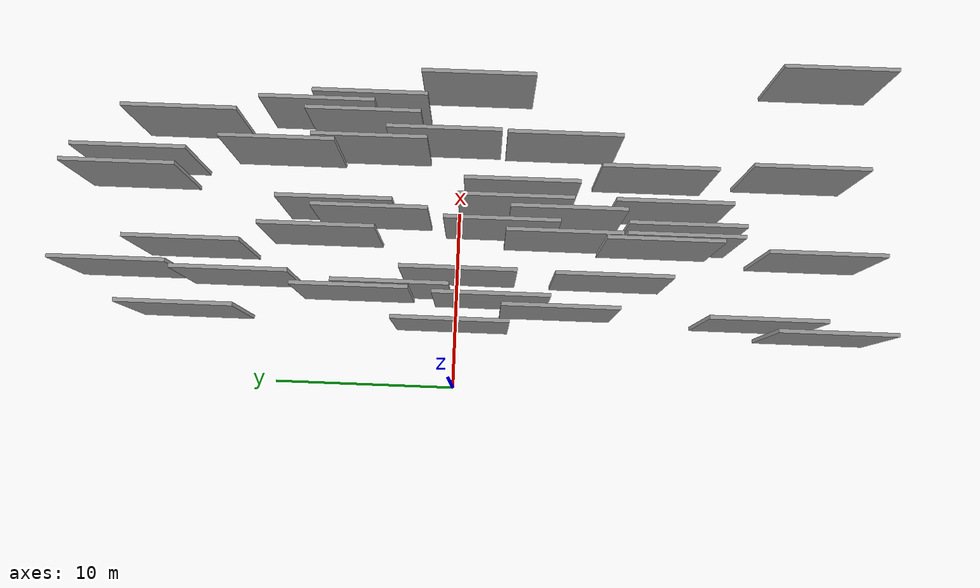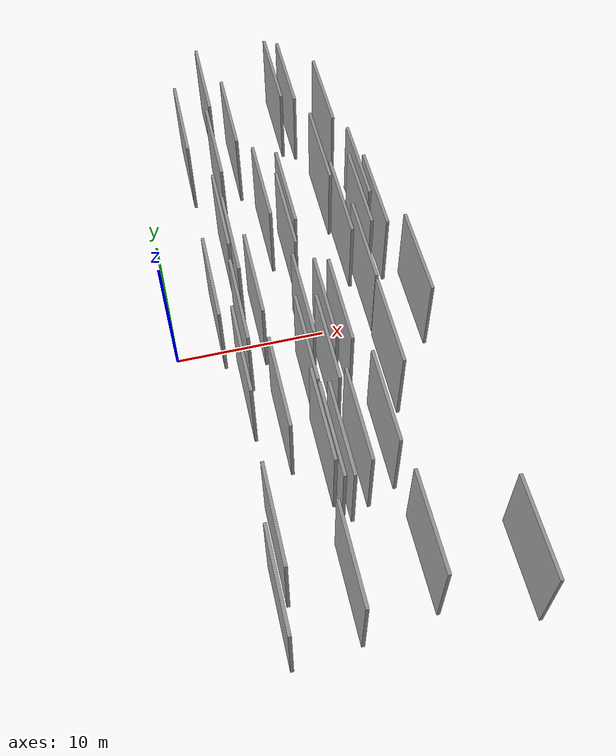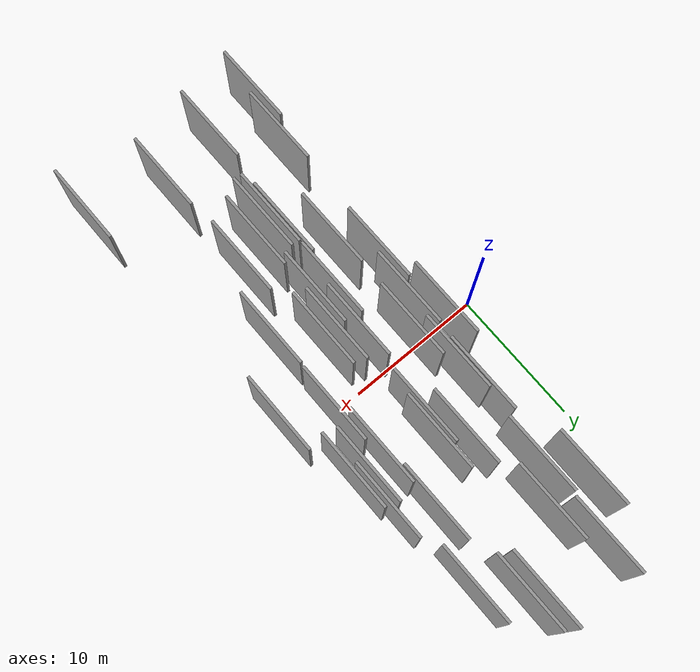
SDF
<sdf version="1.6">
 <world name="default">
  <scene>
   <sky><clouds><speed>12</speed></clouds></sky>
   <ambient>0.4 0.4 0.4 1</ambient>
   <background>0.7 0.7 0.7 1</background>
   <shadows>1</shadows>
  </scene>
  <gravity>0 0 -9.8066</gravity>
  <magnetic_field>6e-06 2.3e-05 -4.2e-05</magnetic_field>
  <physics default="0" name="default_physics" type="ode">
   <ode>
    <solver>
     <type>quick</type>
     <iters>10</iters>
     <sor>1.0</sor>
     <use_dynamic_moi_rescaling>0</use_dynamic_moi_rescaling>
    </solver>
    <constraints>
     <cfm>0</cfm>
     <erp>0.2</erp>
     <contact_max_correcting_vel>100</contact_max_correcting_vel>
     <contact_surface_layer>0.001</contact_surface_layer>
    </constraints>
   </ode>
   <max_step_size>0.004</max_step_size>
   <real_time_factor>1</real_time_factor>
   <real_time_update_rate>250</real_time_update_rate>
  </physics>
  <light name="sun" type="directional">
   <pose>0 0 10 0 0 0</pose>
   <diffuse>0.8 0.8 0.8 1</diffuse>
   <specular>0.2 0.2 0.2 1</specular>
   <attenuation>
    <range>1000</range>
    <constant>0.9</constant>
    <linear>0.01</linear>
    <quadratic>0.001</quadratic>
   </attenuation>
   <direction>-0.5 0.1 -0.9</direction>
  </light>
  <model name="grey_wall_1">
   <static>1</static>
   <pose>8.6059 4.4555 2.5 0.000000 0.000000 1.570796</pose>
   <link name="link">
    <pose>0 0 3.00 0 0 0</pose>
    <collision name="collision"><geometry><box><size>6.00 0.2 6.00</size></box></geometry></collision>
    <visual name="visual">
     <cast_shadows>0</cast_shadows>
     <geometry><box><size>6.00 0.2 6.00</size></box></geometry>
     <material>
      <script>
       <uri>model://grey_wall/materials/scripts</uri>
       <uri>model://grey_wall/materials/textures</uri>
       <name>vrc/grey_wall</name>
      </script>
     </material>
    </visual>
   </link>
  </model>
  <model name="grey_wall_2">
   <static>1</static>
   <pose>14.1788 7.4548 2.5 0.000000 0.000000 1.570796</pose>
   <link name="link">
    <pose>0 0 3.00 0 0 0</pose>
    <collision name="collision"><geometry><box><size>6.00 0.2 6.00</size></box></geometry></collision>
    <visual name="visual">
     <cast_shadows>0</cast_shadows>
     <geometry><box><size>6.00 0.2 6.00</size></box></geometry>
     <material>
      <script>
       <uri>model://grey_wall/materials/scripts</uri>
       <uri>model://grey_wall/materials/textures</uri>
       <name>vrc/grey_wall</name>
      </script>
     </material>
    </visual>
   </link>
  </model>
  <model name="grey_wall_3">
   <static>1</static>
   <pose>3.0007 0.1063 2.5 0.000000 0.000000 1.570796</pose>
   <link name="link">
    <pose>0 0 3.00 0 0 0</pose>
    <collision name="collision"><geometry><box><size>6.00 0.2 6.00</size></box></geometry></collision>
    <visual name="visual">
     <cast_shadows>0</cast_shadows>
     <geometry><box><size>6.00 0.2 6.00</size></box></geometry>
     <material>
      <script>
       <uri>model://grey_wall/materials/scripts</uri>
       <uri>model://grey_wall/materials/textures</uri>
       <name>vrc/grey_wall</name>
      </script>
     </material>
    </visual>
   </link>
  </model>
  <model name="grey_wall_4">
   <static>1</static>
   <pose>16.7987 -19.7199 2.5 0.000000 0.000000 1.570796</pose>
   <link name="link">
    <pose>0 0 3.00 0 0 0</pose>
    <collision name="collision"><geometry><box><size>6.00 0.2 6.00</size></box></geometry></collision>
    <visual name="visual">
     <cast_shadows>0</cast_shadows>
     <geometry><box><size>6.00 0.2 6.00</size></box></geometry>
     <material>
      <script>
       <uri>model://grey_wall/materials/scripts</uri>
       <uri>model://grey_wall/materials/textures</uri>
       <name>vrc/grey_wall</name>
      </script>
     </material>
    </visual>
   </link>
  </model>
  <model name="grey_wall_5">
   <static>1</static>
   <pose>3.5730 -15.8631 2.5 0.000000 0.000000 1.570796</pose>
   <link name="link">
    <pose>0 0 3.00 0 0 0</pose>
    <collision name="collision"><geometry><box><size>6.00 0.2 6.00</size></box></geometry></collision>
    <visual name="visual">
     <cast_shadows>0</cast_shadows>
     <geometry><box><size>6.00 0.2 6.00</size></box></geometry>
     <material>
      <script>
       <uri>model://grey_wall/materials/scripts</uri>
       <uri>model://grey_wall/materials/textures</uri>
       <name>vrc/grey_wall</name>
      </script>
     </material>
    </visual>
   </link>
  </model>
  <model name="grey_wall_6">
   <static>1</static>
   <pose>11.4477 -18.1524 2.5 0.000000 0.000000 1.570796</pose>
   <link name="link">
    <pose>0 0 3.00 0 0 0</pose>
    <collision name="collision"><geometry><box><size>6.00 0.2 6.00</size></box></geometry></collision>
    <visual name="visual">
     <cast_shadows>0</cast_shadows>
     <geometry><box><size>6.00 0.2 6.00</size></box></geometry>
     <material>
      <script>
       <uri>model://grey_wall/materials/scripts</uri>
       <uri>model://grey_wall/materials/textures</uri>
       <name>vrc/grey_wall</name>
      </script>
     </material>
    </visual>
   </link>
  </model>
  <model name="grey_wall_7">
   <static>1</static>
   <pose>8.9062 -5.7655 2.5 0.000000 0.000000 1.570796</pose>
   <link name="link">
    <pose>0 0 3.00 0 0 0</pose>
    <collision name="collision"><geometry><box><size>6.00 0.2 6.00</size></box></geometry></collision>
    <visual name="visual">
     <cast_shadows>0</cast_shadows>
     <geometry><box><size>6.00 0.2 6.00</size></box></geometry>
     <material>
      <script>
       <uri>model://grey_wall/materials/scripts</uri>
       <uri>model://grey_wall/materials/textures</uri>
       <name>vrc/grey_wall</name>
      </script>
     </material>
    </visual>
   </link>
  </model>
  <model name="grey_wall_8">
   <static>1</static>
   <pose>12.7674 -5.4809 2.5 0.000000 0.000000 1.570796</pose>
   <link name="link">
    <pose>0 0 3.00 0 0 0</pose>
    <collision name="collision"><geometry><box><size>6.00 0.2 6.00</size></box></geometry></collision>
    <visual name="visual">
     <cast_shadows>0</cast_shadows>
     <geometry><box><size>6.00 0.2 6.00</size></box></geometry>
     <material>
      <script>
       <uri>model://grey_wall/materials/scripts</uri>
       <uri>model://grey_wall/materials/textures</uri>
       <name>vrc/grey_wall</name>
      </script>
     </material>
    </visual>
   </link>
  </model>
  <model name="grey_wall_9">
   <static>1</static>
   <pose>7.5438 7.0990 2.5 0.000000 0.000000 1.570796</pose>
   <link name="link">
    <pose>0 0 3.00 0 0 0</pose>
    <collision name="collision"><geometry><box><size>6.00 0.2 6.00</size></box></geometry></collision>
    <visual name="visual">
     <cast_shadows>0</cast_shadows>
     <geometry><box><size>6.00 0.2 6.00</size></box></geometry>
     <material>
      <script>
       <uri>model://grey_wall/materials/scripts</uri>
       <uri>model://grey_wall/materials/textures</uri>
       <name>vrc/grey_wall</name>
      </script>
     </material>
    </visual>
   </link>
  </model>
  <model name="grey_wall_10">
   <static>1</static>
   <pose>11.1655 -10.3818 2.5 0.000000 0.000000 1.570796</pose>
   <link name="link">
    <pose>0 0 3.00 0 0 0</pose>
    <collision name="collision"><geometry><box><size>6.00 0.2 6.00</size></box></geometry></collision>
    <visual name="visual">
     <cast_shadows>0</cast_shadows>
     <geometry><box><size>6.00 0.2 6.00</size></box></geometry>
     <material>
      <script>
       <uri>model://grey_wall/materials/scripts</uri>
       <uri>model://grey_wall/materials/textures</uri>
       <name>vrc/grey_wall</name>
      </script>
     </material>
    </visual>
   </link>
  </model>
  <model name="grey_wall_11">
   <static>1</static>
   <pose>8.2481 -11.8106 2.5 0.000000 0.000000 1.570796</pose>
   <link name="link">
    <pose>0 0 3.00 0 0 0</pose>
    <collision name="collision"><geometry><box><size>6.00 0.2 6.00</size></box></geometry></collision>
    <visual name="visual">
     <cast_shadows>0</cast_shadows>
     <geometry><box><size>6.00 0.2 6.00</size></box></geometry>
     <material>
      <script>
       <uri>model://grey_wall/materials/scripts</uri>
       <uri>model://grey_wall/materials/textures</uri>
       <name>vrc/grey_wall</name>
      </script>
     </material>
    </visual>
   </link>
  </model>
  <model name="grey_wall_12">
   <static>1</static>
   <pose>6.6210 13.8926 2.5 0.000000 0.000000 1.570796</pose>
   <link name="link">
    <pose>0 0 3.00 0 0 0</pose>
    <collision name="collision"><geometry><box><size>6.00 0.2 6.00</size></box></geometry></collision>
    <visual name="visual">
     <cast_shadows>0</cast_shadows>
     <geometry><box><size>6.00 0.2 6.00</size></box></geometry>
     <material>
      <script>
       <uri>model://grey_wall/materials/scripts</uri>
       <uri>model://grey_wall/materials/textures</uri>
       <name>vrc/grey_wall</name>
      </script>
     </material>
    </visual>
   </link>
  </model>
  <model name="grey_wall_13">
   <static>1</static>
   <pose>8.9786 6.2793 2.5 0.000000 0.000000 1.570796</pose>
   <link name="link">
    <pose>0 0 3.00 0 0 0</pose>
    <collision name="collision"><geometry><box><size>6.00 0.2 6.00</size></box></geometry></collision>
    <visual name="visual">
     <cast_shadows>0</cast_shadows>
     <geometry><box><size>6.00 0.2 6.00</size></box></geometry>
     <material>
      <script>
       <uri>model://grey_wall/materials/scripts</uri>
       <uri>model://grey_wall/materials/textures</uri>
       <name>vrc/grey_wall</name>
      </script>
     </material>
    </visual>
   </link>
  </model>
  <model name="grey_wall_14">
   <static>1</static>
   <pose>10.4378 17.4808 2.5 0.000000 0.000000 1.570796</pose>
   <link name="link">
    <pose>0 0 3.00 0 0 0</pose>
    <collision name="collision"><geometry><box><size>6.00 0.2 6.00</size></box></geometry></collision>
    <visual name="visual">
     <cast_shadows>0</cast_shadows>
     <geometry><box><size>6.00 0.2 6.00</size></box></geometry>
     <material>
      <script>
       <uri>model://grey_wall/materials/scripts</uri>
       <uri>model://grey_wall/materials/textures</uri>
       <name>vrc/grey_wall</name>
      </script>
     </material>
    </visual>
   </link>
  </model>
  <model name="grey_wall_15">
   <static>1</static>
   <pose>7.6679 -5.5635 2.5 0.000000 0.000000 1.570796</pose>
   <link name="link">
    <pose>0 0 3.00 0 0 0</pose>
    <collision name="collision"><geometry><box><size>6.00 0.2 6.00</size></box></geometry></collision>
    <visual name="visual">
     <cast_shadows>0</cast_shadows>
     <geometry><box><size>6.00 0.2 6.00</size></box></geometry>
     <material>
      <script>
       <uri>model://grey_wall/materials/scripts</uri>
       <uri>model://grey_wall/materials/textures</uri>
       <name>vrc/grey_wall</name>
      </script>
     </material>
    </visual>
   </link>
  </model>
  <model name="grey_wall_16">
   <static>1</static>
   <pose>13.4509 14.5572 2.5 0.000000 0.000000 1.570796</pose>
   <link name="link">
    <pose>0 0 3.00 0 0 0</pose>
    <collision name="collision"><geometry><box><size>6.00 0.2 6.00</size></box></geometry></collision>
    <visual name="visual">
     <cast_shadows>0</cast_shadows>
     <geometry><box><size>6.00 0.2 6.00</size></box></geometry>
     <material>
      <script>
       <uri>model://grey_wall/materials/scripts</uri>
       <uri>model://grey_wall/materials/textures</uri>
       <name>vrc/grey_wall</name>
      </script>
     </material>
    </visual>
   </link>
  </model>
  <model name="grey_wall_17">
   <static>1</static>
   <pose>3.3088 13.9810 2.5 0.000000 0.000000 1.570796</pose>
   <link name="link">
    <pose>0 0 3.00 0 0 0</pose>
    <collision name="collision"><geometry><box><size>6.00 0.2 6.00</size></box></geometry></collision>
    <visual name="visual">
     <cast_shadows>0</cast_shadows>
     <geometry><box><size>6.00 0.2 6.00</size></box></geometry>
     <material>
      <script>
       <uri>model://grey_wall/materials/scripts</uri>
       <uri>model://grey_wall/materials/textures</uri>
       <name>vrc/grey_wall</name>
      </script>
     </material>
    </visual>
   </link>
  </model>
  <model name="grey_wall_18">
   <static>1</static>
   <pose>4.3541 -1.9218 2.5 0.000000 0.000000 1.570796</pose>
   <link name="link">
    <pose>0 0 3.00 0 0 0</pose>
    <collision name="collision"><geometry><box><size>6.00 0.2 6.00</size></box></geometry></collision>
    <visual name="visual">
     <cast_shadows>0</cast_shadows>
     <geometry><box><size>6.00 0.2 6.00</size></box></geometry>
     <material>
      <script>
       <uri>model://grey_wall/materials/scripts</uri>
       <uri>model://grey_wall/materials/textures</uri>
       <name>vrc/grey_wall</name>
      </script>
     </material>
    </visual>
   </link>
  </model>
  <model name="grey_wall_19">
   <static>1</static>
   <pose>13.6673 5.0333 2.5 0.000000 0.000000 1.570796</pose>
   <link name="link">
    <pose>0 0 3.00 0 0 0</pose>
    <collision name="collision"><geometry><box><size>6.00 0.2 6.00</size></box></geometry></collision>
    <visual name="visual">
     <cast_shadows>0</cast_shadows>
     <geometry><box><size>6.00 0.2 6.00</size></box></geometry>
     <material>
      <script>
       <uri>model://grey_wall/materials/scripts</uri>
       <uri>model://grey_wall/materials/textures</uri>
       <name>vrc/grey_wall</name>
      </script>
     </material>
    </visual>
   </link>
  </model>
  <model name="grey_wall_20">
   <static>1</static>
   <pose>3.0209 -19.3131 2.5 0.000000 0.000000 1.570796</pose>
   <link name="link">
    <pose>0 0 3.00 0 0 0</pose>
    <collision name="collision"><geometry><box><size>6.00 0.2 6.00</size></box></geometry></collision>
    <visual name="visual">
     <cast_shadows>0</cast_shadows>
     <geometry><box><size>6.00 0.2 6.00</size></box></geometry>
     <material>
      <script>
       <uri>model://grey_wall/materials/scripts</uri>
       <uri>model://grey_wall/materials/textures</uri>
       <name>vrc/grey_wall</name>
      </script>
     </material>
    </visual>
   </link>
  </model>
  <model name="grey_wall_21">
   <static>1</static>
   <pose>9.3960 -11.1374 2.5 0.000000 0.000000 1.570796</pose>
   <link name="link">
    <pose>0 0 3.00 0 0 0</pose>
    <collision name="collision"><geometry><box><size>6.00 0.2 6.00</size></box></geometry></collision>
    <visual name="visual">
     <cast_shadows>0</cast_shadows>
     <geometry><box><size>6.00 0.2 6.00</size></box></geometry>
     <material>
      <script>
       <uri>model://grey_wall/materials/scripts</uri>
       <uri>model://grey_wall/materials/textures</uri>
       <name>vrc/grey_wall</name>
      </script>
     </material>
    </visual>
   </link>
  </model>
  <model name="grey_wall_22">
   <static>1</static>
   <pose>8.1999 -2.3507 2.5 0.000000 0.000000 1.570796</pose>
   <link name="link">
    <pose>0 0 3.00 0 0 0</pose>
    <collision name="collision"><geometry><box><size>6.00 0.2 6.00</size></box></geometry></collision>
    <visual name="visual">
     <cast_shadows>0</cast_shadows>
     <geometry><box><size>6.00 0.2 6.00</size></box></geometry>
     <material>
      <script>
       <uri>model://grey_wall/materials/scripts</uri>
       <uri>model://grey_wall/materials/textures</uri>
       <name>vrc/grey_wall</name>
      </script>
     </material>
    </visual>
   </link>
  </model>
  <model name="grey_wall_23">
   <static>1</static>
   <pose>3.8497 -5.4383 2.5 0.000000 0.000000 1.570796</pose>
   <link name="link">
    <pose>0 0 3.00 0 0 0</pose>
    <collision name="collision"><geometry><box><size>6.00 0.2 6.00</size></box></geometry></collision>
    <visual name="visual">
     <cast_shadows>0</cast_shadows>
     <geometry><box><size>6.00 0.2 6.00</size></box></geometry>
     <material>
      <script>
       <uri>model://grey_wall/materials/scripts</uri>
       <uri>model://grey_wall/materials/textures</uri>
       <name>vrc/grey_wall</name>
      </script>
     </material>
    </visual>
   </link>
  </model>
  <model name="grey_wall_24">
   <static>1</static>
   <pose>15.8574 -0.9060 2.5 0.000000 0.000000 1.570796</pose>
   <link name="link">
    <pose>0 0 3.00 0 0 0</pose>
    <collision name="collision"><geometry><box><size>6.00 0.2 6.00</size></box></geometry></collision>
    <visual name="visual">
     <cast_shadows>0</cast_shadows>
     <geometry><box><size>6.00 0.2 6.00</size></box></geometry>
     <material>
      <script>
       <uri>model://grey_wall/materials/scripts</uri>
       <uri>model://grey_wall/materials/textures</uri>
       <name>vrc/grey_wall</name>
      </script>
     </material>
    </visual>
   </link>
  </model>
  <model name="grey_wall_25">
   <static>1</static>
   <pose>5.5255 -8.1185 2.5 0.000000 0.000000 1.570796</pose>
   <link name="link">
    <pose>0 0 3.00 0 0 0</pose>
    <collision name="collision"><geometry><box><size>6.00 0.2 6.00</size></box></geometry></collision>
    <visual name="visual">
     <cast_shadows>0</cast_shadows>
     <geometry><box><size>6.00 0.2 6.00</size></box></geometry>
     <material>
      <script>
       <uri>model://grey_wall/materials/scripts</uri>
       <uri>model://grey_wall/materials/textures</uri>
       <name>vrc/grey_wall</name>
      </script>
     </material>
    </visual>
   </link>
  </model>
  <model name="grey_wall_26">
   <static>1</static>
   <pose>14.6102 4.7250 2.5 0.000000 0.000000 1.570796</pose>
   <link name="link">
    <pose>0 0 3.00 0 0 0</pose>
    <collision name="collision"><geometry><box><size>6.00 0.2 6.00</size></box></geometry></collision>
    <visual name="visual">
     <cast_shadows>0</cast_shadows>
     <geometry><box><size>6.00 0.2 6.00</size></box></geometry>
     <material>
      <script>
       <uri>model://grey_wall/materials/scripts</uri>
       <uri>model://grey_wall/materials/textures</uri>
       <name>vrc/grey_wall</name>
      </script>
     </material>
    </visual>
   </link>
  </model>
  <model name="grey_wall_27">
   <static>1</static>
   <pose>12.2904 4.6481 2.5 0.000000 0.000000 1.570796</pose>
   <link name="link">
    <pose>0 0 3.00 0 0 0</pose>
    <collision name="collision"><geometry><box><size>6.00 0.2 6.00</size></box></geometry></collision>
    <visual name="visual">
     <cast_shadows>0</cast_shadows>
     <geometry><box><size>6.00 0.2 6.00</size></box></geometry>
     <material>
      <script>
       <uri>model://grey_wall/materials/scripts</uri>
       <uri>model://grey_wall/materials/textures</uri>
       <name>vrc/grey_wall</name>
      </script>
     </material>
    </visual>
   </link>
  </model>
  <model name="grey_wall_28">
   <static>1</static>
   <pose>11.2876 16.9936 2.5 0.000000 0.000000 1.570796</pose>
   <link name="link">
    <pose>0 0 3.00 0 0 0</pose>
    <collision name="collision"><geometry><box><size>6.00 0.2 6.00</size></box></geometry></collision>
    <visual name="visual">
     <cast_shadows>0</cast_shadows>
     <geometry><box><size>6.00 0.2 6.00</size></box></geometry>
     <material>
      <script>
       <uri>model://grey_wall/materials/scripts</uri>
       <uri>model://grey_wall/materials/textures</uri>
       <name>vrc/grey_wall</name>
      </script>
     </material>
    </visual>
   </link>
  </model>
  <model name="grey_wall_29">
   <static>1</static>
   <pose>9.4121 -3.0317 2.5 0.000000 0.000000 1.570796</pose>
   <link name="link">
    <pose>0 0 3.00 0 0 0</pose>
    <collision name="collision"><geometry><box><size>6.00 0.2 6.00</size></box></geometry></collision>
    <visual name="visual">
     <cast_shadows>0</cast_shadows>
     <geometry><box><size>6.00 0.2 6.00</size></box></geometry>
     <material>
      <script>
       <uri>model://grey_wall/materials/scripts</uri>
       <uri>model://grey_wall/materials/textures</uri>
       <name>vrc/grey_wall</name>
      </script>
     </material>
    </visual>
   </link>
  </model>
  <model name="grey_wall_30">
   <static>1</static>
   <pose>12.0132 9.4062 2.5 0.000000 0.000000 1.570796</pose>
   <link name="link">
    <pose>0 0 3.00 0 0 0</pose>
    <collision name="collision"><geometry><box><size>6.00 0.2 6.00</size></box></geometry></collision>
    <visual name="visual">
     <cast_shadows>0</cast_shadows>
     <geometry><box><size>6.00 0.2 6.00</size></box></geometry>
     <material>
      <script>
       <uri>model://grey_wall/materials/scripts</uri>
       <uri>model://grey_wall/materials/textures</uri>
       <name>vrc/grey_wall</name>
      </script>
     </material>
    </visual>
   </link>
  </model>
  <model name="grey_wall_31">
   <static>1</static>
   <pose>5.4083 17.5520 2.5 0.000000 0.000000 1.570796</pose>
   <link name="link">
    <pose>0 0 3.00 0 0 0</pose>
    <collision name="collision"><geometry><box><size>6.00 0.2 6.00</size></box></geometry></collision>
    <visual name="visual">
     <cast_shadows>0</cast_shadows>
     <geometry><box><size>6.00 0.2 6.00</size></box></geometry>
     <material>
      <script>
       <uri>model://grey_wall/materials/scripts</uri>
       <uri>model://grey_wall/materials/textures</uri>
       <name>vrc/grey_wall</name>
      </script>
     </material>
    </visual>
   </link>
  </model>
  <model name="grey_wall_32">
   <static>1</static>
   <pose>7.4442 -10.6904 2.5 0.000000 0.000000 1.570796</pose>
   <link name="link">
    <pose>0 0 3.00 0 0 0</pose>
    <collision name="collision"><geometry><box><size>6.00 0.2 6.00</size></box></geometry></collision>
    <visual name="visual">
     <cast_shadows>0</cast_shadows>
     <geometry><box><size>6.00 0.2 6.00</size></box></geometry>
     <material>
      <script>
       <uri>model://grey_wall/materials/scripts</uri>
       <uri>model://grey_wall/materials/textures</uri>
       <name>vrc/grey_wall</name>
      </script>
     </material>
    </visual>
   </link>
  </model>
  <model name="grey_wall_33">
   <static>1</static>
   <pose>12.8279 0.7913 2.5 0.000000 0.000000 1.570796</pose>
   <link name="link">
    <pose>0 0 3.00 0 0 0</pose>
    <collision name="collision"><geometry><box><size>6.00 0.2 6.00</size></box></geometry></collision>
    <visual name="visual">
     <cast_shadows>0</cast_shadows>
     <geometry><box><size>6.00 0.2 6.00</size></box></geometry>
     <material>
      <script>
       <uri>model://grey_wall/materials/scripts</uri>
       <uri>model://grey_wall/materials/textures</uri>
       <name>vrc/grey_wall</name>
      </script>
     </material>
    </visual>
   </link>
  </model>
  <model name="grey_wall_34">
   <static>1</static>
   <pose>7.0060 -18.8931 2.5 0.000000 0.000000 1.570796</pose>
   <link name="link">
    <pose>0 0 3.00 0 0 0</pose>
    <collision name="collision"><geometry><box><size>6.00 0.2 6.00</size></box></geometry></collision>
    <visual name="visual">
     <cast_shadows>0</cast_shadows>
     <geometry><box><size>6.00 0.2 6.00</size></box></geometry>
     <material>
      <script>
       <uri>model://grey_wall/materials/scripts</uri>
       <uri>model://grey_wall/materials/textures</uri>
       <name>vrc/grey_wall</name>
      </script>
     </material>
    </visual>
   </link>
  </model>
  <model name="grey_wall_35">
   <static>1</static>
   <pose>5.1392 11.3569 2.5 0.000000 0.000000 1.570796</pose>
   <link name="link">
    <pose>0 0 3.00 0 0 0</pose>
    <collision name="collision"><geometry><box><size>6.00 0.2 6.00</size></box></geometry></collision>
    <visual name="visual">
     <cast_shadows>0</cast_shadows>
     <geometry><box><size>6.00 0.2 6.00</size></box></geometry>
     <material>
      <script>
       <uri>model://grey_wall/materials/scripts</uri>
       <uri>model://grey_wall/materials/textures</uri>
       <name>vrc/grey_wall</name>
      </script>
     </material>
    </visual>
   </link>
  </model>
  <model name="grey_wall_36">
   <static>1</static>
   <pose>10.2625 -3.3271 2.5 0.000000 0.000000 1.570796</pose>
   <link name="link">
    <pose>0 0 3.00 0 0 0</pose>
    <collision name="collision"><geometry><box><size>6.00 0.2 6.00</size></box></geometry></collision>
    <visual name="visual">
     <cast_shadows>0</cast_shadows>
     <geometry><box><size>6.00 0.2 6.00</size></box></geometry>
     <material>
      <script>
       <uri>model://grey_wall/materials/scripts</uri>
       <uri>model://grey_wall/materials/textures</uri>
       <name>vrc/grey_wall</name>
      </script>
     </material>
    </visual>
   </link>
  </model>
  <model name="grey_wall_37">
   <static>1</static>
   <pose>4.5197 5.2571 2.5 0.000000 0.000000 1.570796</pose>
   <link name="link">
    <pose>0 0 3.00 0 0 0</pose>
    <collision name="collision"><geometry><box><size>6.00 0.2 6.00</size></box></geometry></collision>
    <visual name="visual">
     <cast_shadows>0</cast_shadows>
     <geometry><box><size>6.00 0.2 6.00</size></box></geometry>
     <material>
      <script>
       <uri>model://grey_wall/materials/scripts</uri>
       <uri>model://grey_wall/materials/textures</uri>
       <name>vrc/grey_wall</name>
      </script>
     </material>
    </visual>
   </link>
  </model>
  <model name="grey_wall_38">
   <static>1</static>
   <pose>4.7743 3.2257 2.5 0.000000 0.000000 1.570796</pose>
   <link name="link">
    <pose>0 0 3.00 0 0 0</pose>
    <collision name="collision"><geometry><box><size>6.00 0.2 6.00</size></box></geometry></collision>
    <visual name="visual">
     <cast_shadows>0</cast_shadows>
     <geometry><box><size>6.00 0.2 6.00</size></box></geometry>
     <material>
      <script>
       <uri>model://grey_wall/materials/scripts</uri>
       <uri>model://grey_wall/materials/textures</uri>
       <name>vrc/grey_wall</name>
      </script>
     </material>
    </visual>
   </link>
  </model>
  <model name="grey_wall_39">
   <static>1</static>
   <pose>5.5830 -0.2036 2.5 0.000000 0.000000 1.570796</pose>
   <link name="link">
    <pose>0 0 3.00 0 0 0</pose>
    <collision name="collision"><geometry><box><size>6.00 0.2 6.00</size></box></geometry></collision>
    <visual name="visual">
     <cast_shadows>0</cast_shadows>
     <geometry><box><size>6.00 0.2 6.00</size></box></geometry>
     <material>
      <script>
       <uri>model://grey_wall/materials/scripts</uri>
       <uri>model://grey_wall/materials/textures</uri>
       <name>vrc/grey_wall</name>
      </script>
     </material>
    </visual>
   </link>
  </model>
  <model name="grey_wall_40">
   <static>1</static>
   <pose>7.6962 -11.7260 2.5 0.000000 0.000000 1.570796</pose>
   <link name="link">
    <pose>0 0 3.00 0 0 0</pose>
    <collision name="collision"><geometry><box><size>6.00 0.2 6.00</size></box></geometry></collision>
    <visual name="visual">
     <cast_shadows>0</cast_shadows>
     <geometry><box><size>6.00 0.2 6.00</size></box></geometry>
     <material>
      <script>
       <uri>model://grey_wall/materials/scripts</uri>
       <uri>model://grey_wall/materials/textures</uri>
       <name>vrc/grey_wall</name>
      </script>
     </material>
    </visual>
   </link>
  </model>
 </world>
</sdf>
